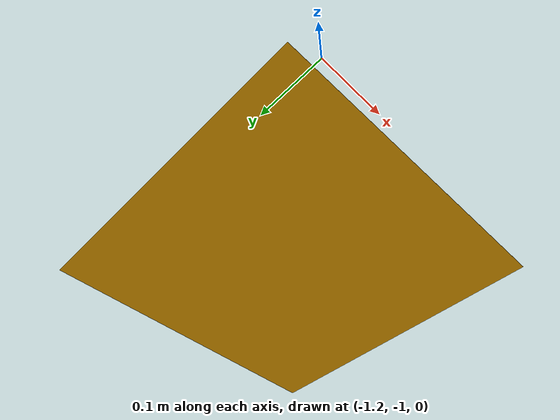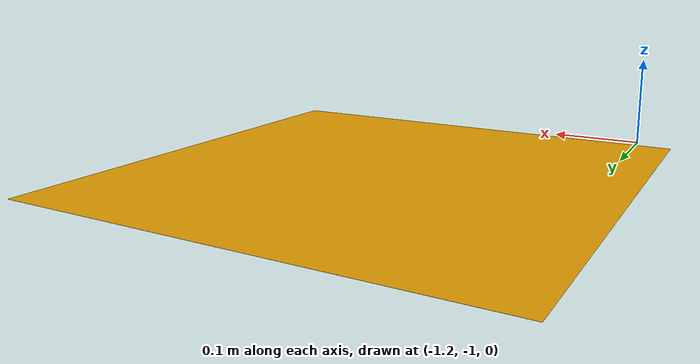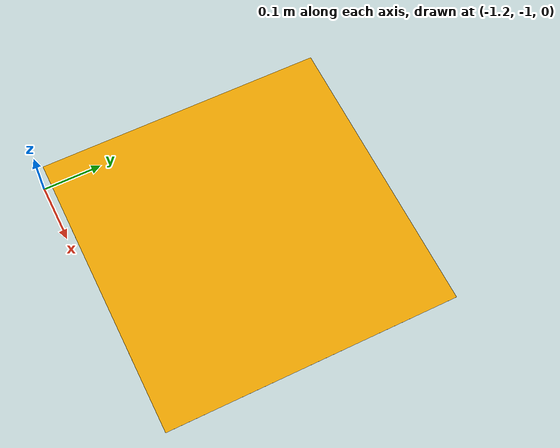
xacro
<?xml version="1.0"?>

<robot name="edufill_D1">

<xacro:macro name="edufill_D1" params="name">

	<link name="edufill_D1">
    		<inertial>
      			<origin xyz="-0.99 -0.737 0" />
      			<mass value="10.0" />
      			<inertia  ixx="1.0" ixy="0.0"  ixz="0.0"  iyy="1.0"  iyz="0.0"  izz="1.0" />
    		</inertial>
    		<visual>
      			<origin xyz="-0.99 -0.737 0"/>
      			<geometry>
        			<box size="0.5 0.5 0.0001" />
      			</geometry>
			<material name="surface">
				<texture filename="package://edufill_gazebo_world/common/worlds/D1.jpg" scale="0.01"/>
			</material>
    		</visual>
    		<collision>
      			<origin xyz="-0.99 -0.737 0"/>
      		<geometry>
        		<box size="0.5 0.5 0.0001" />
      		</geometry>
    		</collision>
  	</link>

</xacro:macro>

<xacro:edufill_D1 name="edufill_D1" />

</robot>
